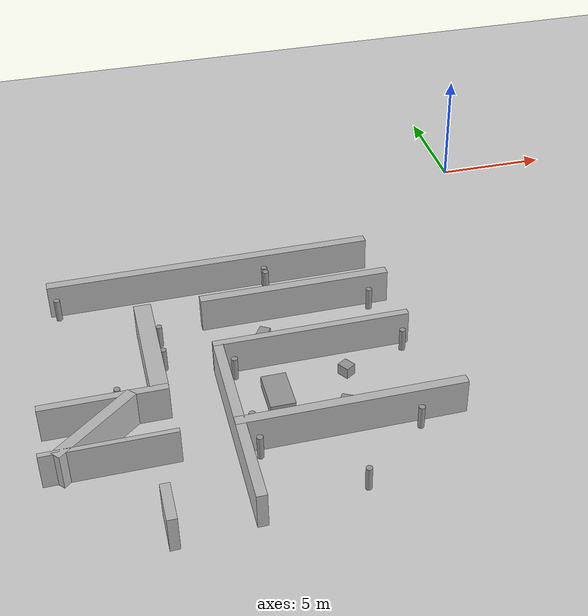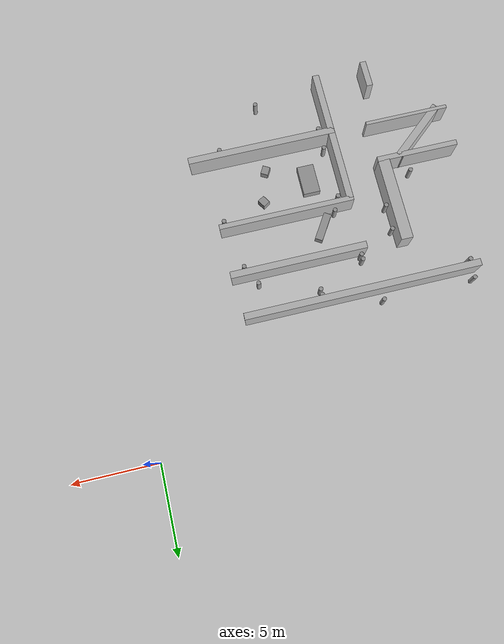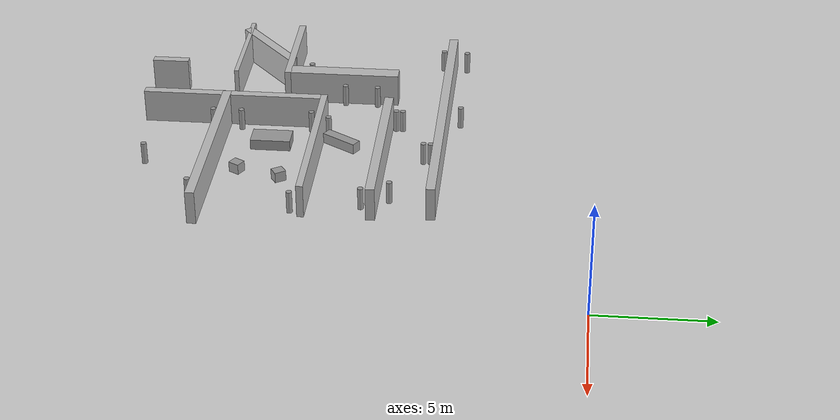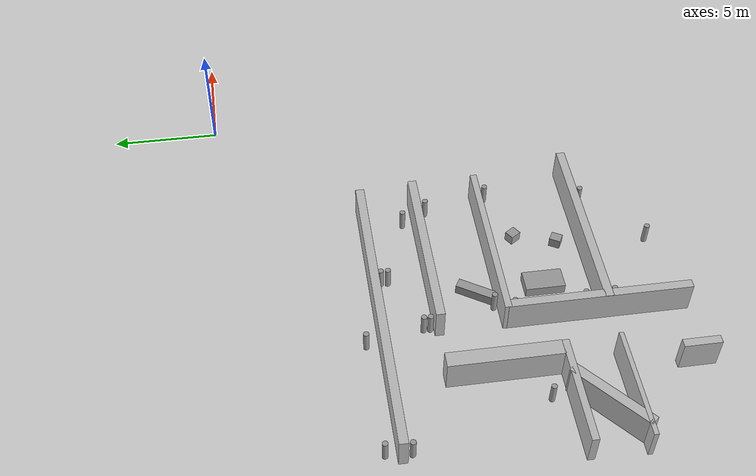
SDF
<sdf version="1.7">
 <world name="test_world">
  <model name="ground_plane">
   <static>1</static>
   <link name="link">
    <collision name="collision">
     <geometry><plane><normal>0 0 1</normal><size>100 100</size></plane></geometry>
    </collision>
    <visual name="visual">
     <geometry><plane><normal>0 0 1</normal><size>100 100</size></plane></geometry>
     <material>
      <script>
       <uri>file://media/materials/scripts/gazebo.material</uri>
       <name>__default__</name>
       <n>Gazebo/Grey</n>
      </script>
     </material>
    </visual>
   </link>
  </model>
  <model name="hw_5">
   <static>1</static>
   <pose>-10.05 -9.15 0.75 0 -0 0</pose>
   <link name="link">
    <collision name="collision"><geometry><box><size>8 0.4 1.5</size></box></geometry></collision>
    <visual name="visual">
     <geometry><box><size>8 0.4 1.5</size></box></geometry>
     <material>
      <script>
       <uri>file://media/materials/scripts/gazebo.material</uri>
       <name>__default__</name>
       <n>Gazebo/Grey</n>
      </script>
     </material>
    </visual>
   </link>
  </model>
  <model name="hw_6">
   <static>1</static>
   <pose>-10.05 -12.1 0.75 0 -0 0</pose>
   <link name="link">
    <collision name="collision"><geometry><box><size>8 0.3 1.5</size></box></geometry></collision>
    <visual name="visual">
     <geometry><box><size>8 0.3 1.5</size></box></geometry>
     <material>
      <script>
       <uri>file://media/materials/scripts/gazebo.material</uri>
       <name>__default__</name>
       <n>Gazebo/Grey</n>
      </script>
     </material>
    </visual>
   </link>
  </model>
  <model name="hw_7">
   <static>1</static>
   <pose>-9.6 -16.55 0.75 0 -0 0</pose>
   <link name="link">
    <collision name="collision"><geometry><box><size>8.9 0.4 1.5</size></box></geometry></collision>
    <visual name="visual">
     <geometry><box><size>8.9 0.4 1.5</size></box></geometry>
     <material>
      <script>
       <uri>file://media/materials/scripts/gazebo.material</uri>
       <name>__default__</name>
       <n>Gazebo/Grey</n>
      </script>
     </material>
    </visual>
   </link>
  </model>
  <model name="vw_252">
   <static>1</static>
   <pose>-16.4 -11.45 0.75 0 -0 0</pose>
   <link name="link">
    <collision name="collision"><geometry><box><size>0.7 5 1.5</size></box></geometry></collision>
    <visual name="visual">
     <geometry><box><size>0.7 5 1.5</size></box></geometry>
     <material>
      <script>
       <uri>file://media/materials/scripts/gazebo.material</uri>
       <name>__default__</name>
       <n>Gazebo/Grey</n>
      </script>
     </material>
    </visual>
   </link>
  </model>
  <model name="hw_5_clone">
   <static>1</static>
   <pose>-13.1839 -6.63977 0.75 0 -0 0</pose>
   <link name="link">
    <collision name="collision"><geometry><box><size>13.8088 0.4 1.5</size></box></geometry></collision>
    <visual name="visual">
     <geometry><box><size>13.8088 0.4 1.5</size></box></geometry>
     <material>
      <script>
       <uri>file://media/materials/scripts/gazebo.material</uri>
       <name>__default__</name>
       <n>Gazebo/Grey</n>
      </script>
     </material>
    </visual>
   </link>
  </model>
  <model name="hw_9_clone">
   <static>1</static>
   <pose>-18.4951 -14.0764 0.75 0 -0 0</pose>
   <link name="link">
    <collision name="collision"><geometry><box><size>4.87261 0.310779 1.5</size></box></geometry></collision>
    <visual name="visual">
     <geometry><box><size>4.87261 0.310779 1.5</size></box></geometry>
     <material>
      <script>
       <uri>file://media/materials/scripts/gazebo.material</uri>
       <name>__default__</name>
       <n>Gazebo/Grey</n>
      </script>
     </material>
    </visual>
   </link>
  </model>
  <model name="hw_9_clone_0">
   <static>1</static>
   <pose>-18.5142 -16.4886 0.75 0 -0 0</pose>
   <link name="link">
    <collision name="collision"><geometry><box><size>5 0.201685 1.5</size></box></geometry></collision>
    <visual name="visual">
     <geometry><box><size>5 0.201685 1.5</size></box></geometry>
     <material>
      <script>
       <uri>file://media/materials/scripts/gazebo.material</uri>
       <name>__default__</name>
       <n>Gazebo/Grey</n>
      </script>
     </material>
    </visual>
   </link>
  </model>
  <model name="vw_252_clone">
   <static>1</static>
   <pose>-16.9114 -19.7311 0.75 0 -0 0</pose>
   <link name="link">
    <collision name="collision"><geometry><box><size>0.372642 1.65915 1.5</size></box></geometry></collision>
    <visual name="visual">
     <geometry><box><size>0.372642 1.65915 1.5</size></box></geometry>
     <material>
      <script>
       <uri>file://media/materials/scripts/gazebo.material</uri>
       <name>__default__</name>
       <n>Gazebo/Grey</n>
      </script>
     </material>
    </visual>
   </link>
  </model>
  <model name="vw_253_clone_clone">
   <static>1</static>
   <pose>-13.8573 -16.2208 0.75 0 -0 0</pose>
   <link name="link">
    <collision name="collision"><geometry><box><size>0.4 8.18505 1.5</size></box></geometry></collision>
    <visual name="visual">
     <geometry><box><size>0.4 8.18505 1.5</size></box></geometry>
     <material>
      <script>
       <uri>file://media/materials/scripts/gazebo.material</uri>
       <name>__default__</name>
       <n>Gazebo/Grey</n>
      </script>
     </material>
    </visual>
   </link>
  </model>
  <model name="unit_box">
   <pose>-11.9398 -14.2286 0.23913 0 1.1e-05 4.5e-05</pose>
   <link name="link">
    <inertial>
     <mass>1</mass>
     <inertia>
      <ixx>0.166667</ixx>
      <ixy>0</ixy>
      <ixz>0</ixz>
      <iyy>0.166667</iyy>
      <iyz>0</iyz>
      <izz>0.166667</izz>
     </inertia>
    </inertial>
    <collision name="collision"><geometry><box><size>1 1.7849 0.478272</size></box></geometry></collision>
    <visual name="visual">
     <geometry><box><size>1 1.7849 0.478272</size></box></geometry>
     <material>
      <script><name>Gazebo/Grey</name><uri>file://media/materials/scripts/gazebo.material</uri></script>
     </material>
    </visual>
   </link>
  </model>
  <model name="unit_cylinder">
   <pose>-6.93968 -9.648 0.499991 0 -0 -5.8e-05</pose>
   <link name="link">
    <inertial>
     <mass>1</mass>
     <inertia><ixx>0.145833</ixx><ixy>0</ixy><ixz>0</ixz><iyy>0.145833</iyy><iyz>0</iyz><izz>0.125</izz></inertia>
    </inertial>
    <collision name="collision">
     <geometry><cylinder><radius>0.124927</radius><length>1</length></cylinder></geometry>
    </collision>
    <visual name="visual">
     <geometry><cylinder><radius>0.124927</radius><length>1</length></cylinder></geometry>
     <material>
      <script><name>Gazebo/Grey</name><uri>file://media/materials/scripts/gazebo.material</uri></script>
     </material>
    </visual>
   </link>
  </model>
  <model name="unit_cylinder_clone_3">
   <pose>-13.3079 -12.6063 0.5 0 0 -5e-05</pose>
   <link name="link">
    <inertial>
     <mass>1</mass>
     <inertia><ixx>0.145833</ixx><ixy>0</ixy><ixz>0</ixz><iyy>0.145833</iyy><iyz>0</iyz><izz>0.125</izz></inertia>
    </inertial>
    <collision name="collision">
     <geometry><cylinder><radius>0.124927</radius><length>1</length></cylinder></geometry>
    </collision>
    <visual name="visual">
     <geometry><cylinder><radius>0.124927</radius><length>1</length></cylinder></geometry>
     <material>
      <script><name>Gazebo/Grey</name><uri>file://media/materials/scripts/gazebo.material</uri></script>
     </material>
    </visual>
   </link>
  </model>
  <model name="unit_cylinder_clone_4">
   <pose>-13.2682 -15.7942 0.49999 -0 -0 -6.2e-05</pose>
   <link name="link">
    <inertial>
     <mass>1</mass>
     <inertia><ixx>0.145833</ixx><ixy>0</ixy><ixz>0</ixz><iyy>0.145833</iyy><iyz>0</iyz><izz>0.125</izz></inertia>
    </inertial>
    <collision name="collision">
     <geometry><cylinder><radius>0.124927</radius><length>1</length></cylinder></geometry>
    </collision>
    <visual name="visual">
     <geometry><cylinder><radius>0.124927</radius><length>1</length></cylinder></geometry>
     <material>
      <script><name>Gazebo/Grey</name><uri>file://media/materials/scripts/gazebo.material</uri></script>
     </material>
    </visual>
   </link>
  </model>
  <model name="unit_cylinder_clone_5">
   <pose>-13.2515 -17.0844 0.499992 0 -0 -4.3e-05</pose>
   <link name="link">
    <inertial>
     <mass>1</mass>
     <inertia><ixx>0.145833</ixx><ixy>0</ixy><ixz>0</ixz><iyy>0.145833</iyy><iyz>0</iyz><izz>0.125</izz></inertia>
    </inertial>
    <collision name="collision">
     <geometry><cylinder><radius>0.124927</radius><length>1</length></cylinder></geometry>
    </collision>
    <visual name="visual">
     <geometry><cylinder><radius>0.124927</radius><length>1</length></cylinder></geometry>
     <material>
      <script><name>Gazebo/Grey</name><uri>file://media/materials/scripts/gazebo.material</uri></script>
     </material>
    </visual>
   </link>
  </model>
  <model name="unit_cylinder_clone_6">
   <pose>-7.10488 -17.0817 0.49999 -0 -0 -6.1e-05</pose>
   <link name="link">
    <inertial>
     <mass>1</mass>
     <inertia><ixx>0.145833</ixx><ixy>0</ixy><ixz>0</ixz><iyy>0.145833</iyy><iyz>0</iyz><izz>0.125</izz></inertia>
    </inertial>
    <collision name="collision">
     <geometry><cylinder><radius>0.124927</radius><length>1</length></cylinder></geometry>
    </collision>
    <visual name="visual">
     <geometry><cylinder><radius>0.124927</radius><length>1</length></cylinder></geometry>
     <material>
      <script><name>Gazebo/Grey</name><uri>file://media/materials/scripts/gazebo.material</uri></script>
     </material>
    </visual>
   </link>
  </model>
  <model name="unit_cylinder_clone_7">
   <pose>-9.88393 -19.5476 0.499999 0 0 -4.2e-05</pose>
   <link name="link">
    <inertial>
     <mass>1</mass>
     <inertia><ixx>0.145833</ixx><ixy>0</ixy><ixz>0</ixz><iyy>0.145833</iyy><iyz>0</iyz><izz>0.125</izz></inertia>
    </inertial>
    <collision name="collision">
     <geometry><cylinder><radius>0.124927</radius><length>1</length></cylinder></geometry>
    </collision>
    <visual name="visual">
     <geometry><cylinder><radius>0.124927</radius><length>1</length></cylinder></geometry>
     <material>
      <script><name>Gazebo/Grey</name><uri>file://media/materials/scripts/gazebo.material</uri></script>
     </material>
    </visual>
   </link>
  </model>
  <model name="unit_cylinder_clone_10">
   <pose>-19.7626 -7.07194 0.499991 0 -0 -4.8e-05</pose>
   <link name="link">
    <inertial>
     <mass>1</mass>
     <inertia><ixx>0.145833</ixx><ixy>0</ixy><ixz>0</ixz><iyy>0.145833</iyy><iyz>0</iyz><izz>0.125</izz></inertia>
    </inertial>
    <collision name="collision">
     <geometry><cylinder><radius>0.124927</radius><length>1</length></cylinder></geometry>
    </collision>
    <visual name="visual">
     <geometry><cylinder><radius>0.124927</radius><length>1</length></cylinder></geometry>
     <material>
      <script><name>Gazebo/Grey</name><uri>file://media/materials/scripts/gazebo.material</uri></script>
     </material>
    </visual>
   </link>
  </model>
  <model name="unit_box_0_clone_1">
   <pose>-8.99742 -13.4698 0.235786 0 -0 0.572818</pose>
   <link name="link">
    <inertial>
     <mass>1</mass>
     <inertia>
      <ixx>0.166667</ixx>
      <ixy>0</ixy>
      <ixz>0</ixz>
      <iyy>0.166667</iyy>
      <iyz>0</iyz>
      <izz>0.166667</izz>
     </inertia>
    </inertial>
    <collision name="collision">
     <geometry><box><size>0.450934 0.510982 0.471572</size></box></geometry>
    </collision>
    <visual name="visual">
     <geometry><box><size>0.450934 0.510982 0.471572</size></box></geometry>
     <material>
      <script><name>Gazebo/Grey</name><uri>file://media/materials/scripts/gazebo.material</uri></script>
     </material>
    </visual>
   </link>
  </model>
  <model name="unit_box_0_clone_clone">
   <pose>-9.54272 -15.3951 0.235786 0 0 -0.520666</pose>
   <link name="link">
    <inertial>
     <mass>1</mass>
     <inertia>
      <ixx>0.166667</ixx>
      <ixy>0</ixy>
      <ixz>0</ixz>
      <iyy>0.166667</iyy>
      <iyz>0</iyz>
      <izz>0.166667</izz>
     </inertia>
    </inertial>
    <collision name="collision">
     <geometry><box><size>0.450934 0.510983 0.471572</size></box></geometry>
    </collision>
    <visual name="visual">
     <geometry><box><size>0.450934 0.510983 0.471572</size></box></geometry>
     <material>
      <script><name>Gazebo/Grey</name><uri>file://media/materials/scripts/gazebo.material</uri></script>
     </material>
    </visual>
   </link>
  </model>
  <model name="unit_cylinder_clone_1_clone_2">
   <pose>-14.2715 -5.91181 0.5 0 0 -6.1e-05</pose>
   <link name="link">
    <inertial>
     <mass>1</mass>
     <inertia><ixx>0.145833</ixx><ixy>0</ixy><ixz>0</ixz><iyy>0.145833</iyy><iyz>0</iyz><izz>0.125</izz></inertia>
    </inertial>
    <collision name="collision">
     <geometry><cylinder><radius>0.124927</radius><length>1</length></cylinder></geometry>
    </collision>
    <visual name="visual">
     <geometry><cylinder><radius>0.124927</radius><length>1</length></cylinder></geometry>
     <material>
      <script><name>Gazebo/Grey</name><uri>file://media/materials/scripts/gazebo.material</uri></script>
     </material>
    </visual>
   </link>
  </model>
  <model name="unit_cylinder_clone_1_clone_3">
   <pose>-19.6741 -5.96307 0.5 0 0 -6.1e-05</pose>
   <link name="link">
    <inertial>
     <mass>1</mass>
     <inertia><ixx>0.145833</ixx><ixy>0</ixy><ixz>0</ixz><iyy>0.145833</iyy><iyz>0</iyz><izz>0.125</izz></inertia>
    </inertial>
    <collision name="collision">
     <geometry><cylinder><radius>0.124927</radius><length>1</length></cylinder></geometry>
    </collision>
    <visual name="visual">
     <geometry><cylinder><radius>0.124927</radius><length>1</length></cylinder></geometry>
     <material>
      <script><name>Gazebo/Grey</name><uri>file://media/materials/scripts/gazebo.material</uri></script>
     </material>
    </visual>
   </link>
  </model>
  <model name="unit_cylinder_clone_3_clone">
   <pose>-10.9029 -7.00268 0.499991 0 -0 -5.6e-05</pose>
   <link name="link">
    <inertial>
     <mass>1</mass>
     <inertia><ixx>0.145833</ixx><ixy>0</ixy><ixz>0</ixz><iyy>0.145833</iyy><iyz>0</iyz><izz>0.125</izz></inertia>
    </inertial>
    <collision name="collision">
     <geometry><cylinder><radius>0.124927</radius><length>1</length></cylinder></geometry>
    </collision>
    <visual name="visual">
     <geometry><cylinder><radius>0.124927</radius><length>1</length></cylinder></geometry>
     <material>
      <script><name>Gazebo/Grey</name><uri>file://media/materials/scripts/gazebo.material</uri></script>
     </material>
    </visual>
   </link>
  </model>
  <model name="unit_cylinder_clone_3_clone_0">
   <pose>-17.9445 -13.207 0.499991 0 -0 -5.7e-05</pose>
   <link name="link">
    <inertial>
     <mass>1</mass>
     <inertia><ixx>0.145833</ixx><ixy>0</ixy><ixz>0</ixz><iyy>0.145833</iyy><iyz>0</iyz><izz>0.125</izz></inertia>
    </inertial>
    <collision name="collision">
     <geometry><cylinder><radius>0.124927</radius><length>1</length></cylinder></geometry>
    </collision>
    <visual name="visual">
     <geometry><cylinder><radius>0.124927</radius><length>1</length></cylinder></geometry>
     <material>
      <script><name>Gazebo/Grey</name><uri>file://media/materials/scripts/gazebo.material</uri></script>
     </material>
    </visual>
   </link>
  </model>
  <model name="unit_cylinder_clone_3_clone_1">
   <pose>-7.53191 -8.49191 0.499991 0 -0 -5.7e-05</pose>
   <link name="link">
    <inertial>
     <mass>1</mass>
     <inertia><ixx>0.145833</ixx><ixy>0</ixy><ixz>0</ixz><iyy>0.145833</iyy><iyz>0</iyz><izz>0.125</izz></inertia>
    </inertial>
    <collision name="collision">
     <geometry><cylinder><radius>0.124927</radius><length>1</length></cylinder></geometry>
    </collision>
    <visual name="visual">
     <geometry><cylinder><radius>0.124927</radius><length>1</length></cylinder></geometry>
     <material>
      <script><name>Gazebo/Grey</name><uri>file://media/materials/scripts/gazebo.material</uri></script>
     </material>
    </visual>
   </link>
  </model>
  <model name="unit_cylinder_clone_3_clone_3">
   <pose>-6.40418 -12.5986 0.499991 -0 -0 -5.5e-05</pose>
   <link name="link">
    <inertial>
     <mass>1</mass>
     <inertia><ixx>0.145833</ixx><ixy>0</ixy><ixz>0</ixz><iyy>0.145833</iyy><iyz>0</iyz><izz>0.125</izz></inertia>
    </inertial>
    <collision name="collision">
     <geometry><cylinder><radius>0.124927</radius><length>1</length></cylinder></geometry>
    </collision>
    <visual name="visual">
     <geometry><cylinder><radius>0.124927</radius><length>1</length></cylinder></geometry>
     <material>
      <script><name>Gazebo/Grey</name><uri>file://media/materials/scripts/gazebo.material</uri></script>
     </material>
    </visual>
   </link>
  </model>
  <model name="unit_box_0_clone_clone_clone">
   <pose>-12.0582 -11.1035 0.235778 -8e-06 2e-06 -0.563844</pose>
   <link name="link">
    <inertial>
     <mass>1</mass>
     <inertia>
      <ixx>0.166667</ixx>
      <ixy>0</ixy>
      <ixz>0</ixz>
      <iyy>0.166667</iyy>
      <iyz>0</iyz>
      <izz>0.166667</izz>
     </inertia>
    </inertial>
    <collision name="collision"><geometry><box><size>0.450934 1.71723 0.471572</size></box></geometry></collision>
    <visual name="visual">
     <geometry><box><size>0.450934 1.71723 0.471572</size></box></geometry>
     <material>
      <script><name>Gazebo/Grey</name><uri>file://media/materials/scripts/gazebo.material</uri></script>
     </material>
    </visual>
   </link>
  </model>
  <model name="unit_cylinder_clone_3_clone_clone">
   <pose>-15.8878 -9.88182 0.499999 0 0 -5.6e-05</pose>
   <link name="link">
    <inertial>
     <mass>1</mass>
     <inertia><ixx>0.145833</ixx><ixy>0</ixy><ixz>0</ixz><iyy>0.145833</iyy><iyz>0</iyz><izz>0.125</izz></inertia>
    </inertial>
    <collision name="collision">
     <geometry><cylinder><radius>0.124927</radius><length>1</length></cylinder></geometry>
    </collision>
    <visual name="visual">
     <geometry><cylinder><radius>0.124927</radius><length>1</length></cylinder></geometry>
     <material>
      <script><name>Gazebo/Grey</name><uri>file://media/materials/scripts/gazebo.material</uri></script>
     </material>
    </visual>
   </link>
  </model>
  <model name="hw_4_clone">
   <static>1</static>
   <pose>-18.9185 -15.3427 0.75 0 -0 0.712137</pose>
   <link name="link">
    <collision name="collision"><geometry><box><size>3.96092 0.451675 1.5</size></box></geometry></collision>
    <visual name="visual">
     <geometry><box><size>3.96092 0.451675 1.5</size></box></geometry>
     <material>
      <script>
       <uri>file://media/materials/scripts/gazebo.material</uri>
       <name>__default__</name>
       <n>Gazebo/Grey</n>
      </script>
     </material>
    </visual>
   </link>
  </model>
  <model name="unit_cylinder_clone_3_clone_clone_clone">
   <pose>-15.9247 -11.3742 0.499991 0 -0 -5.5e-05</pose>
   <link name="link">
    <inertial>
     <mass>1</mass>
     <inertia><ixx>0.145833</ixx><ixy>0</ixy><ixz>0</ixz><iyy>0.145833</iyy><iyz>0</iyz><izz>0.125</izz></inertia>
    </inertial>
    <collision name="collision">
     <geometry><cylinder><radius>0.124927</radius><length>1</length></cylinder></geometry>
    </collision>
    <visual name="visual">
     <geometry><cylinder><radius>0.124927</radius><length>1</length></cylinder></geometry>
     <material>
      <script><name>Gazebo/Grey</name><uri>file://media/materials/scripts/gazebo.material</uri></script>
     </material>
    </visual>
   </link>
  </model>
  <model name="unit_cylinder_clone_3_clone_clone_0">
   <pose>-13.7187 -8.79051 0.499999 0 0 -5.6e-05</pose>
   <link name="link">
    <inertial>
     <mass>1</mass>
     <inertia><ixx>0.145833</ixx><ixy>0</ixy><ixz>0</ixz><iyy>0.145833</iyy><iyz>0</iyz><izz>0.125</izz></inertia>
    </inertial>
    <collision name="collision">
     <geometry><cylinder><radius>0.124927</radius><length>1</length></cylinder></geometry>
    </collision>
    <visual name="visual">
     <geometry><cylinder><radius>0.124927</radius><length>1</length></cylinder></geometry>
     <material>
      <script><name>Gazebo/Grey</name><uri>file://media/materials/scripts/gazebo.material</uri></script>
     </material>
    </visual>
   </link>
  </model>
  <model name="unit_cylinder_clone_3_clone_clone_6">
   <pose>-13.7203 -8.49785 0.499991 -0 -0 -5.6e-05</pose>
   <link name="link">
    <inertial>
     <mass>1</mass>
     <inertia><ixx>0.145833</ixx><ixy>0</ixy><ixz>0</ixz><iyy>0.145833</iyy><iyz>0</iyz><izz>0.125</izz></inertia>
    </inertial>
    <collision name="collision">
     <geometry><cylinder><radius>0.124927</radius><length>1</length></cylinder></geometry>
    </collision>
    <visual name="visual">
     <geometry><cylinder><radius>0.124927</radius><length>1</length></cylinder></geometry>
     <material>
      <script><name>Gazebo/Grey</name><uri>file://media/materials/scripts/gazebo.material</uri></script>
     </material>
    </visual>
   </link>
  </model>
  <model name="unit_cylinder_clone_3_clone_clone_7">
   <pose>-10.9037 -7.3202 0.499999 0 0 -5.5e-05</pose>
   <link name="link">
    <inertial>
     <mass>1</mass>
     <inertia><ixx>0.145833</ixx><ixy>0</ixy><ixz>0</ixz><iyy>0.145833</iyy><iyz>0</iyz><izz>0.125</izz></inertia>
    </inertial>
    <collision name="collision">
     <geometry><cylinder><radius>0.124927</radius><length>1</length></cylinder></geometry>
    </collision>
    <visual name="visual">
     <geometry><cylinder><radius>0.124927</radius><length>1</length></cylinder></geometry>
     <material>
      <script><name>Gazebo/Grey</name><uri>file://media/materials/scripts/gazebo.material</uri></script>
     </material>
    </visual>
   </link>
  </model>
  <model name="unit_cylinder_clone_3_clone_clone_8">
   <pose>-12.9117 -11.7748 0.499994 0 -0 0.235671</pose>
   <link name="link">
    <inertial>
     <mass>1</mass>
     <inertia><ixx>0.145833</ixx><ixy>0</ixy><ixz>0</ixz><iyy>0.145833</iyy><iyz>0</iyz><izz>0.125</izz></inertia>
    </inertial>
    <collision name="collision">
     <geometry><cylinder><radius>0.124927</radius><length>1</length></cylinder></geometry>
    </collision>
    <visual name="visual">
     <geometry><cylinder><radius>0.124927</radius><length>1</length></cylinder></geometry>
     <material>
      <script><name>Gazebo/Grey</name><uri>file://media/materials/scripts/gazebo.material</uri></script>
     </material>
    </visual>
   </link>
  </model>
 </world>
</sdf>
